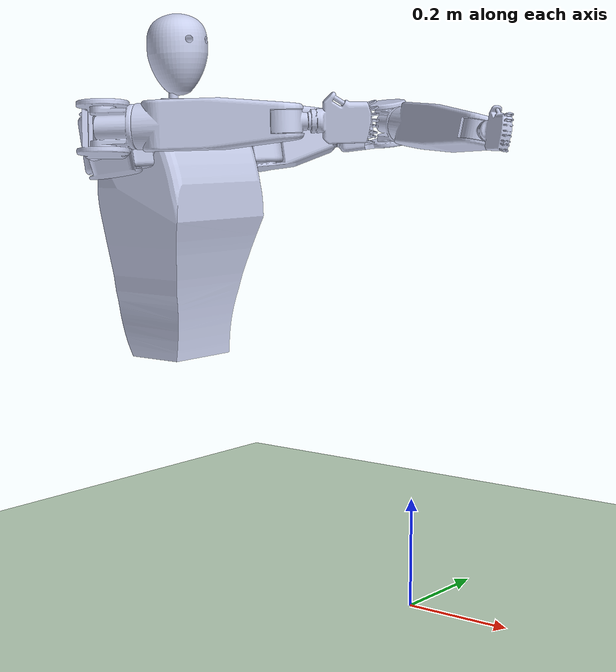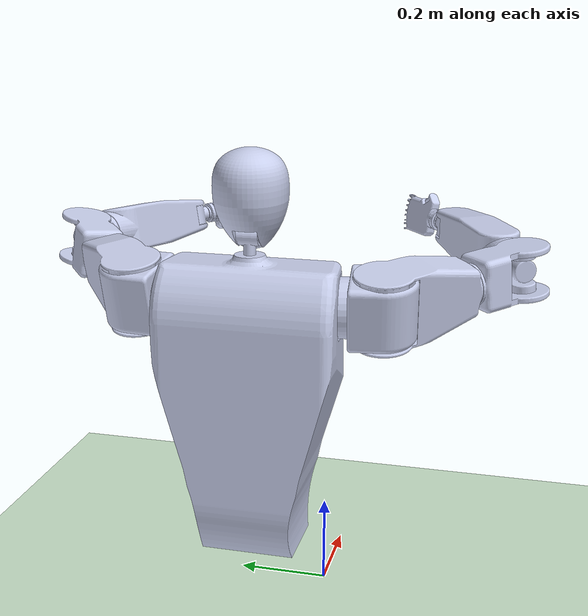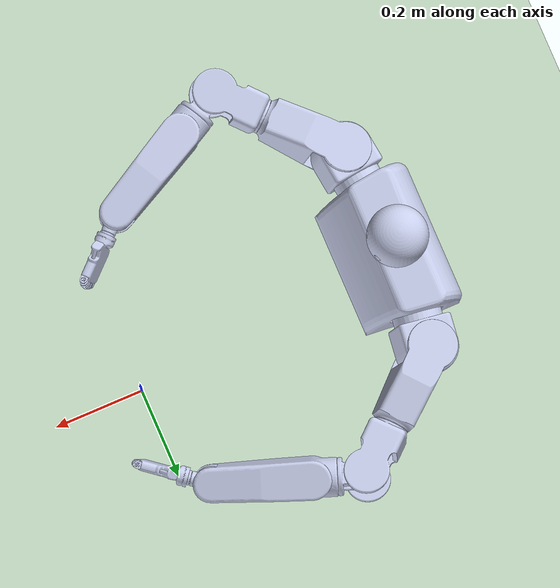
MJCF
<mujoco model="body_arm_sim">
    <compiler angle="radian"
              inertiafromgeom="true"
              texturedir="textures/"
              meshdir=""/>

    <option impratio="20" cone="elliptic" density="1.2" viscosity="0.00002" timestep="0.002"/>

    <default>
        <geom density="5.0"/>
        <default class="arm_joint">
            <joint axis="1 0 0" range="-3.14 3.14" damping="2" limited="true" armature="0.0002" frictionloss="0.01"/>
            <position kp="3" ctrlrange="-3.14 3.14"/>
        </default>
        <default class="joint">
            <joint axis="1 0 0" range="-3.14 3.14" damping="1" limited="true" armature="0.0002" frictionloss="0.01"/>
            <position kp="3" ctrlrange="-2 2"/>
        </default>
    </default>

    <size njmax="500" nconmax="100"/>
    <asset>
        <texture builtin="gradient" height="100" rgb1=".4 .5 .6" rgb2="0 0 0" type="skybox" width="100"/>
        <texture name="texplane" type="2d" builtin="checker" rgb1=".2 .3 .4" rgb2=".1 0.15 0.2" width="100" height="100"/>
        <material name="MatPlane" reflectance="0.5" texture="texplane" texrepeat="1 1" texuniform="true"/>

        <mesh name="body" file="meshes/robot/body.STL"/>
        <mesh name="neck" file="meshes/robot/neck.STL"/>
        <mesh name="head" file="meshes/robot/head.STL"/>

        <mesh name="left_1" file="meshes/robot/left_1.STL"/>
        <mesh name="left_2" file="meshes/robot/left_2.STL"/>
        <mesh name="left_3" file="meshes/robot/left_3.STL"/>
        <mesh name="left_4" file="meshes/robot/left_4.STL"/>
        <mesh name="left_5" file="meshes/robot/left_5.STL"/>
        <mesh name="left_6" file="meshes/robot/left_6.STL"/>
        <mesh name="left_7" file="meshes/robot/left_7.STL"/>

        <mesh name="palm_left" file="meshes/robot/palm_left.STL"/>
        <mesh name="finger_11_left" file="meshes/robot/finger_11_left.STL" />
        <mesh name="finger_12_left" file="meshes/robot/finger_12_left.STL" />
        <mesh name="finger_13_left" file="meshes/robot/finger_13_left.STL" />
        <mesh name="finger_14_left" file="meshes/robot/finger_14_left.STL" />
        <mesh name="finger_21_left" file="meshes/robot/finger_21_left.STL" />
        <mesh name="finger_22_left" file="meshes/robot/finger_22_left.STL" />
        <mesh name="finger_23_left" file="meshes/robot/finger_23_left.STL" />
        <mesh name="finger_31_left" file="meshes/robot/finger_31_left.STL" />
        <mesh name="finger_32_left" file="meshes/robot/finger_32_left.STL" />
        <mesh name="finger_33_left" file="meshes/robot/finger_33_left.STL" />
        <mesh name="finger_41_left" file="meshes/robot/finger_41_left.STL" />
        <mesh name="finger_42_left" file="meshes/robot/finger_42_left.STL" />
        <mesh name="finger_43_left" file="meshes/robot/finger_43_left.STL" />
        <mesh name="finger_51_left" file="meshes/robot/finger_51_left.STL" />
        <mesh name="finger_52_left" file="meshes/robot/finger_52_left.STL" />
        <mesh name="finger_53_left" file="meshes/robot/finger_53_left.STL" />

        <mesh name="right_1" file="meshes/robot/right_1.STL"/>
        <mesh name="right_2" file="meshes/robot/right_2.STL"/>
        <mesh name="right_3" file="meshes/robot/right_3.STL"/>
        <mesh name="right_4" file="meshes/robot/right_4.STL"/>
        <mesh name="right_5" file="meshes/robot/right_5.STL"/>
        <mesh name="right_6" file="meshes/robot/right_6.STL"/>
        <mesh name="right_7" file="meshes/robot/right_7.STL"/>

        <mesh name="palm_right" file="meshes/robot/palm_right.STL"/>
    </asset>
    <worldbody>
        <geom name="floor" pos="0 0 0" size="10 10 0.125" type="plane" material="MatPlane" condim="3" group="2" rgba="0.8 0.9 0.8 1"/>
        <light cutoff="100" diffuse="1 1 1" dir="-0 0 -1.3" directional="true" exponent="1" pos="0 0 1.3" specular=".1 .1 .1" castshadow="false"/>

        <body name="body" pos="-0.56 0 0.412">
            <geom type="mesh" contype="0" conaffinity="0" group="1" rgba="0.792157 0.819608 0.933333 1" mesh="body" name="body_visual"/>
            <geom type="mesh" rgba="0.792157 0.819608 0.933333 1" mesh="body" name="body_collision"/>

            <body name="left_1" pos="0.0084368 0.13751 0.43" quat="0.422014 0.509768 -0.577484 -0.478073">
                <inertial pos="-0.0389123 -8.15098e-11 4.37584e-11" quat="0.707107 0 0 0.707107" mass="0.450915" diaginertia="0.00114268 0.000950117 0.000939472"/>
                <joint class="arm_joint" name="left_j1" axis="1 0 0"/>
                <geom type="mesh" contype="0" conaffinity="0" group="1" rgba="0.792157 0.819608 0.933333 1" mesh="left_1"/>
                <geom type="mesh" rgba="0.792157 0.819608 0.933333 1" mesh="left_1"/>
                <body name="left_2" pos="-0.075 0 0" quat="0.934135 0 -0.356919 0">
                    <inertial pos="-0.0621308 1.25597e-07 0.00042437" quat="3.21075e-06 0.706526 3.20548e-06 0.707688" mass="1.56019" diaginertia="0.00710312 0.00597558 0.00259922"/>
                    <joint class="arm_joint" name="left_j2" axis="0 1 0"/>
                    <geom type="mesh" contype="0" conaffinity="0" group="1" rgba="0.792157 0.819608 0.933333 1" mesh="left_2"/>
                    <geom type="mesh" rgba="0.792157 0.819608 0.933333 1" mesh="left_2"/>
                    <body name="left_3" pos="-0.16 0 0" quat="0.792163 0.61031 0 0">
                        <inertial pos="-0.059665 2.14069e-07 -0.000729859" quat="0.502955 0.497027 0.497027 0.502955" mass="0.52034" diaginertia="0.00128574 0.00107323 0.000678269"/>
                        <joint class="arm_joint" name="left_j3" axis="1 0 0"/>
                        <geom type="mesh" contype="0" conaffinity="0" group="1" rgba="0.792157 0.819608 0.933333 1" mesh="left_3"/>
                        <geom type="mesh" rgba="0.792157 0.819608 0.933333 1" mesh="left_3"/>
                        <body name="left_4" pos="-0.121 0 0.037" quat="0.854814 0 0 0.518935">
                            <inertial pos="-0.0236502 -1.38379e-09 -0.037" quat="0.5 0.5 0.5 0.5" mass="0.187003" diaginertia="0.000176801 0.00013087 0.000111406"/>
                            <joint class="arm_joint" name="left_j4" axis="0 0 -1"/>
                            <geom type="mesh" contype="0" conaffinity="0" group="1" rgba="0.792157 0.819608 0.933333 1" mesh="left_4"/>
                            <geom type="mesh" rgba="0.792157 0.819608 0.933333 1" mesh="left_4"/>
                            <body name="left_5" pos="-0.058 0 -0.037" quat="0.184654 -0.982804 0 0">
                                <inertial pos="-0.118694 -2.89295e-08 1.30138e-07" quat="0.499999 0.500001 0.500001 0.499999" mass="1.41911" diaginertia="0.00746362 0.00730999 0.00143555"/>
                                <joint class="arm_joint" name="left_j5" axis="1 0 0"/>
                                <geom type="mesh" contype="0" conaffinity="0" group="1" rgba="0.792157 0.819608 0.933333 1" mesh="left_5"/>
                                <geom type="mesh" rgba="0.792157 0.819608 0.933333 1" mesh="left_5"/>
                                <body name="left_6" pos="-0.250811 0 0.025" quat="0.108969 0 0 0.994045">
                                    <inertial pos="0.00125752 -0.0001315 -0.0250062" quat="0.036822 0.70613 -0.0368186 0.706165" mass="0.130726" diaginertia="6.86601e-05 5.37786e-05 4.85598e-05"/>
                                    <joint class="arm_joint" name="left_j6" axis="0 0 -1"/>
                                    <geom type="mesh" contype="0" conaffinity="0" group="1" rgba="0.792157 0.819608 0.933333 1" mesh="left_6"/>
                                    <geom type="mesh" rgba="0.792157 0.819608 0.933333 1" mesh="left_6"/>
                                    <body name="left_7" pos="0.0457505 -0.00478427 -0.025" quat="0.997782 0.041459 -0.00216185 -0.0520287">
                                        <inertial pos="-0.00442721 0 0" mass="0.0053794" diaginertia="4.8315e-07 2.91425e-07 2.91425e-07"/>
                                        <joint class="arm_joint" name="left_j7" axis="1 0 0"/>
                                        <geom type="mesh" contype="0" conaffinity="0" group="1" rgba="0.792157 0.819608 0.933333 1" mesh="left_7"/>
                                        <geom type="mesh" rgba="0.792157 0.819608 0.933333 1" mesh="left_7"/>
                                        <body name="palm_left" quat="0 0.707107 0 0.707107">
                                            <inertial pos="0 0 0" mass="0.01" diaginertia="0.001 0.001 0.001"/>
                                            <geom type="mesh" contype="0" conaffinity="0" group="1" rgba="0.792157 0.819608 0.933333 1" mesh="palm_left" name="palm_left_visual"/>
                                            <geom type="mesh" rgba="0.792157 0.819608 0.933333 1" mesh="palm_left" name="palm_left_collision"/>

                                        </body>
                                    </body>
                                </body>
                            </body>
                        </body>
                    </body>
                </body>
            </body>

            <body name="right_1" pos="0.00843684 -0.13751 0.43" quat="0.480532 0.575418 -0.507969 -0.424205">
                <inertial pos="0.0389123 1.82654e-10 -1.72699e-10" quat="0.707107 0 0 0.707107" mass="0.450915" diaginertia="0.00114268 0.000950117 0.000939472"/>
                <joint class="arm_joint" name="right_j1" axis="-1 0 0"/>
                <geom type="mesh" contype="0" conaffinity="0" group="1" rgba="0.792157 0.819608 0.933333 1" mesh="right_1"/>
                <geom type="mesh" rgba="0.792157 0.819608 0.933333 1" mesh="right_1"/>
                <body name="right_2" pos="0.075 0 0" quat="0.952069 0 0.305884 0">
                    <inertial pos="0.0621308 -1.05439e-07 0.000424393" quat="-4.66413e-06 0.707687 -4.6718e-06 0.706526" mass="1.56018" diaginertia="0.00710311 0.00597557 0.00259921"/>
                    <joint class="arm_joint" name="right_j2" axis="0 -1 0"/>
                    <geom type="mesh" contype="0" conaffinity="0" group="1" rgba="0.792157 0.819608 0.933333 1" mesh="right_2"/>
                    <geom type="mesh" rgba="0.792157 0.819608 0.933333 1" mesh="right_2"/>
                    <body name="right_3" pos="0.16 0 0" quat="0.656844 -0.754026 0 0">
                        <inertial pos="0.059665 -2.31924e-09 -0.000729475" quat="0.497027 0.502955 0.502955 0.497027" mass="0.520345" diaginertia="0.00128574 0.00107323 0.000678269"/>
                        <joint class="arm_joint" name="right_j3" axis="-1 0 0"/>
                        <geom type="mesh" contype="0" conaffinity="0" group="1" rgba="0.792157 0.819608 0.933333 1" mesh="right_3"/>
                        <geom type="mesh" rgba="0.792157 0.819608 0.933333 1" mesh="right_3"/>
                        <body name="right_4" pos="0.121 0 0.037" quat="0.735818 0 0 -0.677179">
                            <inertial pos="-0.0224102 0.00755756 -0.037" quat="0.574359 0.574359 0.412445 0.412445" mass="0.187003" diaginertia="0.000176801 0.00013087 0.000111406"/>
                            <joint class="arm_joint" name="right_j4" axis="0 0 1"/>
                            <geom type="mesh" contype="0" conaffinity="0" group="1" rgba="0.792157 0.819608 0.933333 1" mesh="right_4"/>
                            <geom type="mesh" rgba="0.792157 0.819608 0.933333 1" mesh="right_4"/>
                            <body name="right_5" pos="-0.0549589 0.0185342 -0.037" quat="0.161794 0.00622882 0.0379623 0.986074">
                                <inertial pos="0.118694 -2.00275e-08 -1.32429e-07" quat="0.499999 0.500001 0.500001 0.499999" mass="1.41911" diaginertia="0.00746362 0.00730999 0.00143555"/>
                                <joint class="arm_joint" name="right_j5" axis="-1 0 0"/>
                                <geom type="mesh" contype="0" conaffinity="0" group="1" rgba="0.792157 0.819608 0.933333 1" mesh="right_5"/>
                                <geom type="mesh" rgba="0.792157 0.819608 0.933333 1" mesh="right_5"/>
                                <body name="right_6" pos="0.250811 0 0.025" quat="0.991932 0 0 0.126775">
                                    <inertial pos="0.00126437 -1.89855e-09 -0.0249938" quat="1.90283e-06 0.707124 -3.40285e-07 0.707089" mass="0.130726"
                                              diaginertia="6.86601e-05 5.37786e-05 4.85598e-05"/>
                                    <joint class="arm_joint" name="right_j6" axis="0 0 1"/>
                                    <geom type="mesh" contype="0" conaffinity="0" group="1" rgba="0.792157 0.819608 0.933333 1" mesh="right_6"/>
                                    <geom type="mesh" rgba="0.792157 0.819608 0.933333 1" mesh="right_6"/>
                                    <body name="right_7" pos="0.046 0 -0.025" quat="0.994816 0.101695 0 0">
                                        <inertial pos="-0.00442721 0 0" mass="0.0053794" diaginertia="4.8315e-07 2.91425e-07 2.91425e-07"/>
                                        <joint class="arm_joint" name="right_j7" axis="-1 0 0"/>
                                        <geom type="mesh" contype="0" conaffinity="0" group="1" rgba="0.792157 0.819608 0.933333 1" mesh="right_7"/>
                                        <geom type="mesh" rgba="0.792157 0.819608 0.933333 1" mesh="right_7"/>
                                        <body name="palm_right" quat="0.707107 0 0.707107 0">
                                            <inertial pos="0 0 0" mass="0.01" diaginertia="0.001 0.001 0.001"/>
                                            <geom type="mesh" contype="0" conaffinity="0" group="1" rgba="0.792157 0.819608 0.933333 1" mesh="palm_right"/>
                                            <geom type="mesh" rgba="0.792157 0.819608 0.933333 1" mesh="palm_right"/>
                                        </body>
                                    </body>
                                </body>
                            </body>
                        </body>
                    </body>
                </body>
            </body>

            <body name="neck" pos="-0.016175 0 0.515" quat="0.707105 0 0 -0.707108">
                <inertial pos="2.88789e-08 -8.65281e-09 0.0265816" quat="0.49928 0.499347 0.500725 0.500646" mass="0.0321665" diaginertia="7.22266e-06 5.20118e-06 5.14644e-06"/>
                <joint name="body_neck" pos="0 0 0" axis="0 0 -1" limited="true" range="-1.57 1.57"/>
                <geom type="mesh" contype="0" conaffinity="0" group="1" rgba="0.792157 0.819608 0.933333 1" mesh="neck"/>
                <geom type="mesh" rgba="0.792157 0.819608 0.933333 1" mesh="neck"/>
                <body name="head" pos="0.022 6.0166e-05 0.03" quat="0.999635 0.0269787 3.68907e-05 0.0013669">
                    <inertial pos="-0.022 0.0152892 0.0648053" quat="0.705981 0.0399037 -0.0399025 0.705979" mass="1.19735" diaginertia="0.00240376 0.00237423 0.00183049"/>
                    <joint name="neck_head" pos="0 0 0" axis="-1 0 0" limited="true" range="-1.57 1.57"/>
                    <geom type="mesh" contype="0" conaffinity="0" group="1" rgba="0.792157 0.819608 0.933333 1" mesh="head"/>
                    <geom type="mesh" rgba="0.792157 0.819608 0.933333 1" mesh="head"/>
                </body>
            </body>
        </body>
    </worldbody>

    <contact>
        <exclude body1="body" body2="left_1"/>
        <exclude body1="body" body2="right_1"/>
    </contact>

    <actuator>
        <position class="arm_joint" name="j1_left_T" joint="left_j1" ctrllimited="true"/>
        <position class="arm_joint" name="j2_left_T" joint="left_j2" ctrllimited="true"/>
        <position class="arm_joint" name="j3_left_T" joint="left_j3" ctrllimited="true"/>
        <position class="arm_joint" name="j4_left_T" joint="left_j4" ctrllimited="true"/>
        <position class="arm_joint" name="j5_left_T" joint="left_j5" ctrllimited="true"/>
        <position class="arm_joint" name="j6_left_T" joint="left_j6" ctrllimited="true"/>
        <position class="arm_joint" name="j7_left_T" joint="left_j7" ctrllimited="true" ctrlrange="-1.57 1.57"/>

        <position class="arm_joint" name="j1_right_T" joint="right_j1" ctrllimited="true"/>
        <position class="arm_joint" name="j2_right_T" joint="right_j2" ctrllimited="true"/>
        <position class="arm_joint" name="j3_right_T" joint="right_j3" ctrllimited="true"/>
        <position class="arm_joint" name="j4_right_T" joint="right_j4" ctrllimited="true"/>
        <position class="arm_joint" name="j5_right_T" joint="right_j5" ctrllimited="true"/>
        <position class="arm_joint" name="j6_right_T" joint="right_j6" ctrllimited="true"/>
        <position class="arm_joint" name="j7_right_T" joint="right_j7" ctrllimited="true" ctrlrange="-1.57 1.57"/>

    </actuator>
</mujoco>
